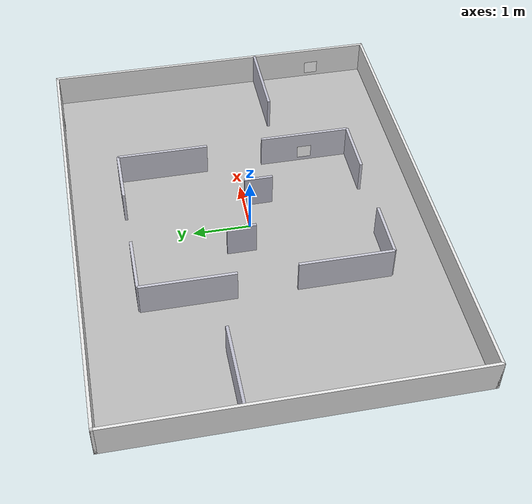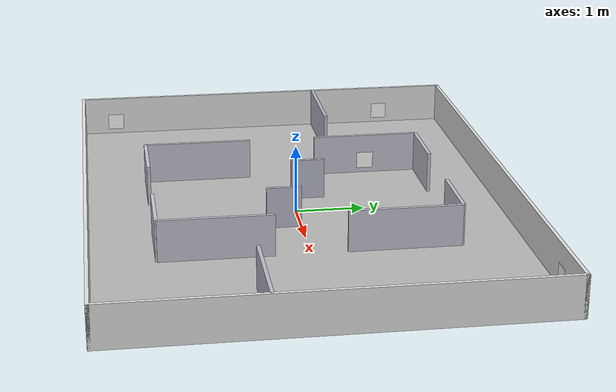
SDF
<?xml version='1.0' encoding='UTF-8'?>
<sdf version="1.7">
  <world name="moderate_robotino_maze">
    <!-- Gazebo Sim / Ignition Gazebo Fortress systems -->
    <plugin filename="ignition-gazebo-physics-system" name="ignition::gazebo::systems::Physics"/>
    <plugin filename="ignition-gazebo-user-commands-system" name="ignition::gazebo::systems::UserCommands"/>
    <plugin filename="ignition-gazebo-scene-broadcaster-system" name="ignition::gazebo::systems::SceneBroadcaster"/>
    <plugin filename="ignition-gazebo-sensors-system" name="ignition::gazebo::systems::Sensors">
      <render_engine>ogre2</render_engine>
    </plugin>
    <scene>
      <ambient>0.4 0.4 0.4 1</ambient>
      <background>0.7 0.7 0.7 1</background>
      <shadows>true</shadows>
    </scene>
    <light name="sun" type="directional">
      <cast_shadows>true</cast_shadows>
      <pose>0 0 10 0 0 0</pose>
      <diffuse>0.8 0.8 0.8 1</diffuse>
      <specular>0.2 0.2 0.2 1</specular>
      <attenuation>
        <range>1000</range>
        <constant>0.9</constant>
        <linear>0.01</linear>
        <quadratic>0.001</quadratic>
      </attenuation>
      <direction>-0.5 0.1 -0.9</direction>
    </light>
    <model name="moderate_four_L_maze">
      <static>true</static>
      <pose>0 0 0 0 0 0</pose>
      <!-- Floor -->
      <link name="floor_link">
        <pose>0 0 -0.01 0 0 0</pose>
        <collision name="floor_collision">
          <geometry>
            <box>
              <size>8.0 6.0 0.02</size>
            </box>
          </geometry>
        </collision>
        <visual name="floor_visual">
          <geometry>
            <box>
              <size>8.0 6.0 0.02</size>
            </box>
          </geometry>
          <material>
            <ambient>0.72 0.72 0.72 1</ambient>
            <diffuse>0.72 0.72 0.72 1</diffuse>
          </material>
        </visual>
      </link>
      <!-- Outer boundary -->
      <link name="north_wall_link">
        <pose>0 3.025 0.30 0 0 0</pose>
        <collision name="north_wall_collision">
          <geometry>
            <box>
              <size>8.10 0.05 0.60</size>
            </box>
          </geometry>
        </collision>
        <visual name="north_wall_visual">
          <geometry>
            <box>
              <size>8.10 0.05 0.60</size>
            </box>
          </geometry>
          <material>
            <ambient>0.90 0.90 0.90 1</ambient>
            <diffuse>0.90 0.90 0.90 1</diffuse>
          </material>
        </visual>
      </link>
      <link name="south_wall_link">
        <pose>0 -3.025 0.30 0 0 0</pose>
        <collision name="south_wall_collision">
          <geometry>
            <box>
              <size>8.10 0.05 0.60</size>
            </box>
          </geometry>
        </collision>
        <visual name="south_wall_visual">
          <geometry>
            <box>
              <size>8.10 0.05 0.60</size>
            </box>
          </geometry>
          <material>
            <ambient>0.90 0.90 0.90 1</ambient>
            <diffuse>0.90 0.90 0.90 1</diffuse>
          </material>
        </visual>
      </link>
      <link name="east_wall_link">
        <pose>4.025 0 0.30 0 0 0</pose>
        <collision name="east_wall_collision">
          <geometry>
            <box>
              <size>0.05 6.10 0.60</size>
            </box>
          </geometry>
        </collision>
        <visual name="east_wall_visual">
          <geometry>
            <box>
              <size>0.05 6.10 0.60</size>
            </box>
          </geometry>
          <material>
            <ambient>0.90 0.90 0.90 1</ambient>
            <diffuse>0.90 0.90 0.90 1</diffuse>
          </material>
        </visual>
      </link>
      <link name="west_wall_link">
        <pose>-4.025 0 0.30 0 0 0</pose>
        <collision name="west_wall_collision">
          <geometry>
            <box>
              <size>0.05 6.10 0.60</size>
            </box>
          </geometry>
        </collision>
        <visual name="west_wall_visual">
          <geometry>
            <box>
              <size>0.05 6.10 0.60</size>
            </box>
          </geometry>
          <material>
            <ambient>0.90 0.90 0.90 1</ambient>
            <diffuse>0.90 0.90 0.90 1</diffuse>
          </material>
        </visual>
      </link>
      <!-- Upper-left L: vertical leg + top arm pointing right -->
      <link name="upper_left_vertical_link">
        <pose>-1.55 1.30 0.30 0 0 0</pose>
        <collision name="upper_left_vertical_collision">
          <geometry>
            <box>
              <size>0.05 1.60 0.60</size>
            </box>
          </geometry>
        </collision>
        <visual name="upper_left_vertical_visual">
          <geometry>
            <box>
              <size>0.05 1.60 0.60</size>
            </box>
          </geometry>
          <material>
            <ambient>0.78 0.78 0.83 1</ambient>
            <diffuse>0.78 0.78 0.83 1</diffuse>
          </material>
        </visual>
        <!-- 10 cm AprilTag ID 3 (apriltags_10cm model) mounted flush on this wall's inner (+X) face, facing into the arena -->
      </link>
      <link name="upper_left_horizontal_link">
        <pose>-1.05 2.10 0.30 0 0 0</pose>
        <collision name="upper_left_horizontal_collision">
          <geometry>
            <box>
              <size>1.00 0.05 0.60</size>
            </box>
          </geometry>
        </collision>
        <visual name="upper_left_horizontal_visual">
          <geometry>
            <box>
              <size>1.00 0.05 0.60</size>
            </box>
          </geometry>
          <material>
            <ambient>0.78 0.78 0.83 1</ambient>
            <diffuse>0.78 0.78 0.83 1</diffuse>
          </material>
        </visual>
      </link>
      <!-- Upper-right L: vertical leg + top arm pointing left -->
      <link name="upper_right_vertical_link">
        <pose>1.55 1.30 0.30 0 0 0</pose>
        <collision name="upper_right_vertical_collision">
          <geometry>
            <box>
              <size>0.05 1.60 0.60</size>
            </box>
          </geometry>
        </collision>
        <visual name="upper_right_vertical_visual">
          <geometry>
            <box>
              <size>0.05 1.60 0.60</size>
            </box>
          </geometry>
          <material>
            <ambient>0.78 0.78 0.83 1</ambient>
            <diffuse>0.78 0.78 0.83 1</diffuse>
          </material>
        </visual>
      </link>
      <link name="upper_right_horizontal_link">
        <pose>1.05 2.10 0.30 0 0 0</pose>
        <collision name="upper_right_horizontal_collision">
          <geometry>
            <box>
              <size>1.00 0.05 0.60</size>
            </box>
          </geometry>
        </collision>
        <visual name="upper_right_horizontal_visual">
          <geometry>
            <box>
              <size>1.00 0.05 0.60</size>
            </box>
          </geometry>
          <material>
            <ambient>0.78 0.78 0.83 1</ambient>
            <diffuse>0.78 0.78 0.83 1</diffuse>
          </material>
        </visual>
      </link>
      <!-- Lower-left L: vertical leg + bottom arm pointing right -->
      <link name="lower_left_vertical_link">
        <pose>-1.55 -1.30 0.30 0 0 0</pose>
        <collision name="lower_left_vertical_collision">
          <geometry>
            <box>
              <size>0.05 1.60 0.60</size>
            </box>
          </geometry>
        </collision>
        <visual name="lower_left_vertical_visual">
          <geometry>
            <box>
              <size>0.05 1.60 0.60</size>
            </box>
          </geometry>
          <material>
            <ambient>0.78 0.78 0.83 1</ambient>
            <diffuse>0.78 0.78 0.83 1</diffuse>
          </material>
        </visual>
      </link>
      <link name="lower_left_horizontal_link">
        <pose>-1.05 -2.10 0.30 0 0 0</pose>
        <collision name="lower_left_horizontal_collision">
          <geometry>
            <box>
              <size>1.00 0.05 0.60</size>
            </box>
          </geometry>
        </collision>
        <visual name="lower_left_horizontal_visual">
          <geometry>
            <box>
              <size>1.00 0.05 0.60</size>
            </box>
          </geometry>
          <material>
            <ambient>0.78 0.78 0.83 1</ambient>
            <diffuse>0.78 0.78 0.83 1</diffuse>
          </material>
        </visual>
      </link>
      <!-- Lower-right L: vertical leg + bottom arm pointing left -->
      <link name="lower_right_vertical_link">
        <pose>1.55 -1.30 0.30 0 0 0</pose>
        <collision name="lower_right_vertical_collision">
          <geometry>
            <box>
              <size>0.05 1.60 0.60</size>
            </box>
          </geometry>
        </collision>
        <visual name="lower_right_vertical_visual">
          <geometry>
            <box>
              <size>0.05 1.60 0.60</size>
            </box>
          </geometry>
          <material>
            <ambient>0.78 0.78 0.83 1</ambient>
            <diffuse>0.78 0.78 0.83 1</diffuse>
          </material>
        </visual>
        <!-- 10 cm AprilTag ID 1 (apriltags_10cm model) mounted flush on this wall's inner (-X) face, facing into the arena -->
      </link>
      <link name="lower_right_horizontal_link">
        <pose>1.05 -2.10 0.30 0 0 0</pose>
        <collision name="lower_right_horizontal_collision">
          <geometry>
            <box>
              <size>1.00 0.05 0.60</size>
            </box>
          </geometry>
        </collision>
        <visual name="lower_right_horizontal_visual">
          <geometry>
            <box>
              <size>1.00 0.05 0.60</size>
            </box>
          </geometry>
          <material>
            <ambient>0.78 0.78 0.83 1</ambient>
            <diffuse>0.78 0.78 0.83 1</diffuse>
          </material>
        </visual>
      </link>
      <link name="left_outer_gate_link">
        <pose>-3.3 0.85 0.3 0 0 0</pose>
        <collision name="left_outer_gate_collision">
          <geometry>
            <box>
              <size>1.45 0.05 0.6</size>
            </box>
          </geometry>
        </collision>
        <visual name="left_outer_gate_visual">
          <geometry>
            <box>
              <size>1.45 0.05 0.6</size>
            </box>
          </geometry>
          <material>
            <ambient>0.74 0.74 0.80 1</ambient>
            <diffuse>0.74 0.74 0.80 1</diffuse>
          </material>
        </visual>
      </link>
      <link name="right_outer_gate_link">
        <pose>3.3 -0.85 0.3 0 0 0</pose>
        <collision name="right_outer_gate_collision">
          <geometry>
            <box>
              <size>1.45 0.05 0.6</size>
            </box>
          </geometry>
        </collision>
        <visual name="right_outer_gate_visual">
          <geometry>
            <box>
              <size>1.45 0.05 0.6</size>
            </box>
          </geometry>
          <material>
            <ambient>0.74 0.74 0.80 1</ambient>
            <diffuse>0.74 0.74 0.80 1</diffuse>
          </material>
        </visual>
      </link>
      <link name="center_upper_baffle_link">
        <pose>-0.55 0.25 0.3 0 0 0</pose>
        <collision name="center_upper_baffle_collision">
          <geometry>
            <box>
              <size>0.05 0.5 0.6</size>
            </box>
          </geometry>
        </collision>
        <visual name="center_upper_baffle_visual">
          <geometry>
            <box>
              <size>0.05 0.5 0.6</size>
            </box>
          </geometry>
          <material>
            <ambient>0.74 0.74 0.80 1</ambient>
            <diffuse>0.74 0.74 0.80 1</diffuse>
          </material>
        </visual>
      </link>
      <link name="center_lower_baffle_link">
        <pose>0.55 -0.25 0.3 0 0 0</pose>
        <collision name="center_lower_baffle_collision">
          <geometry>
            <box>
              <size>0.05 0.5 0.6</size>
            </box>
          </geometry>
        </collision>
        <visual name="center_lower_baffle_visual">
          <geometry>
            <box>
              <size>0.05 0.5 0.6</size>
            </box>
          </geometry>
          <material>
            <ambient>0.74 0.74 0.80 1</ambient>
            <diffuse>0.74 0.74 0.80 1</diffuse>
          </material>
        </visual>
      </link>
    </model>

    <include>
      <name>apriltags_10cm_arena</name>
      <uri>model://apriltags_10cm</uri>
      <pose>0 0 0 0 0 0</pose>
      <static>true</static>
    </include>
  </world>
</sdf>

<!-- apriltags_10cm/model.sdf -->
<sdf version="1.7">

  <model name="apriltags_10cm">

    <static>true</static>

    <!-- TAG 0 - outside                                            -->
    <!-- Lower-left branch                                          -->
    <!-- Mounted on west outer wall and facing east                 -->

    <link name="tag36_11_00000">

      <pose>-3.99 -2.50 0.20 0 0 -1.570796</pose>

      <visual name="visual">

        <geometry>
          <box>
            <size>0.25 0.002 0.25</size>
          </box>
        </geometry>

        <material>

          <ambient>1 1 1 1</ambient>
          <diffuse>1 1 1 1</diffuse>
          <specular>0 0 0 1</specular>

          <pbr>
            <metal>

              <albedo_map>
                model://apriltags_10cm/materials/textures/tag36_11_00000.png
              </albedo_map>

              <roughness>1.0</roughness>
              <metalness>0.0</metalness>

            </metal>
          </pbr>

        </material>

        <cast_shadows>false</cast_shadows>

      </visual>

    </link>

    <!-- TAG 1 - inside                                             -->
    <!-- Lower-right L, inner leg                                   -->
    <!-- Internal wall: lower_right_vertical_link                   -->
    <!--   x = 1.55 (wall center), y = -2.10 to -0.50                -->
    <!-- Tag mounted on the wall's inner (west) face and facing west,-->
    <!-- i.e. into the arena interior                                -->

    <link name="tag36_11_00001">

      <!--
        Wall center is x = 1.55, inner face at x = 1.525.
        Tag sits just proud of that face, on the interior side.
      -->

      <pose>1.520 -1.30 0.20 0 0 1.570796</pose>

      <visual name="visual">

        <geometry>
          <box>
            <size>0.25 0.002 0.25</size>
          </box>
        </geometry>

        <material>

          <ambient>1 1 1 1</ambient>
          <diffuse>1 1 1 1</diffuse>
          <specular>0 0 0 1</specular>

          <pbr>
            <metal>

              <albedo_map>
                model://apriltags_10cm/materials/textures/tag36_11_00001.png
              </albedo_map>

              <roughness>1.0</roughness>
              <metalness>0.0</metalness>

            </metal>
          </pbr>

        </material>

        <cast_shadows>false</cast_shadows>

      </visual>

    </link>

    <!-- TAG 5 - outside                                            -->
    <!-- Lower-right branch                                         -->
    <!-- Mounted on east outer wall and facing west                 -->

    <link name="tag36_11_00005">

      <pose>3.99 -2.0 0.20 0 0 1.570796</pose>

      <visual name="visual">

        <geometry>
          <box>
            <size>0.25 0.002 0.25</size>
          </box>
        </geometry>

        <material>

          <ambient>1 1 1 1</ambient>
          <diffuse>1 1 1 1</diffuse>
          <specular>0 0 0 1</specular>

          <pbr>
            <metal>

              <albedo_map>
                model://apriltags_10cm/materials/textures/tag36_11_00002.png
              </albedo_map>

              <roughness>1.0</roughness>
              <metalness>0.0</metalness>

            </metal>
          </pbr>

        </material>

        <cast_shadows>false</cast_shadows>

      </visual>

    </link>

    <!-- TAG 3 - inside                                             -->
    <!-- Upper-left L, inner leg                                    -->
    <!-- Internal wall: upper_left_vertical_link                    -->
    <!--   x = -1.55 (wall center), y = 0.50 to 2.10                 -->
    <!-- Tag mounted on the wall's inner (east) face and facing east,-->
    <!-- i.e. into the arena interior                                -->

    <link name="tag36_11_00003">

      <!--
        Wall center is x = -1.55, inner face at x = -1.525.
        Tag sits just proud of that face, on the interior side.
      -->

      <pose>-1.520 1.30 0.20 0 0 -1.570796</pose>

      <visual name="visual">

        <geometry>
          <box>
            <size>0.25 0.002 0.25</size>
          </box>
        </geometry>

        <material>

          <ambient>1 1 1 1</ambient>
          <diffuse>1 1 1 1</diffuse>
          <specular>0 0 0 1</specular>

          <pbr>
            <metal>

              <albedo_map>
                model://apriltags_10cm/materials/textures/tag36_11_00003.png
              </albedo_map>

              <roughness>1.0</roughness>
              <metalness>0.0</metalness>

            </metal>
          </pbr>

        </material>

        <cast_shadows>false</cast_shadows>

      </visual>

    </link>

    <!-- TAG 4 - outside                                            -->
    <!-- Upper-left branch                                          -->
    <!-- Mounted on west outer wall and facing east                 -->

    <link name="tag36_11_00004">

      <pose>-3.99 2.0 0.20 0 0 -1.570796</pose>

      <visual name="visual">

        <geometry>
          <box>
            <size>0.25 0.002 0.25</size>
          </box>
        </geometry>

        <material>

          <ambient>1 1 1 1</ambient>
          <diffuse>1 1 1 1</diffuse>
          <specular>0 0 0 1</specular>

          <pbr>
            <metal>

              <albedo_map>
                model://apriltags_10cm/materials/textures/tag36_11_00004.png
              </albedo_map>

              <roughness>1.0</roughness>
              <metalness>0.0</metalness>

            </metal>
          </pbr>

        </material>

        <cast_shadows>false</cast_shadows>

      </visual>

    </link>

    <!-- TAG 2 - outside                                            -->
    <!-- Upper-right branch                                         -->
    <!-- Mounted on north outer wall and facing south               -->

    <link name="tag36_11_00002">

      <pose>3.15 2.99 0.20 0 0 3.141593</pose>

      <visual name="visual">

        <geometry>
          <box>
            <size>0.25 0.002 0.25</size>
          </box>
        </geometry>

        <material>

          <ambient>1 1 1 1</ambient>
          <diffuse>1 1 1 1</diffuse>
          <specular>0 0 0 1</specular>

          <pbr>
            <metal>

              <albedo_map>
                model://apriltags_10cm/materials/textures/tag36_11_00005.png
              </albedo_map>

              <roughness>1.0</roughness>
              <metalness>0.0</metalness>

            </metal>
          </pbr>

        </material>

        <cast_shadows>false</cast_shadows>

      </visual>

    </link>

  </model>

</sdf>
